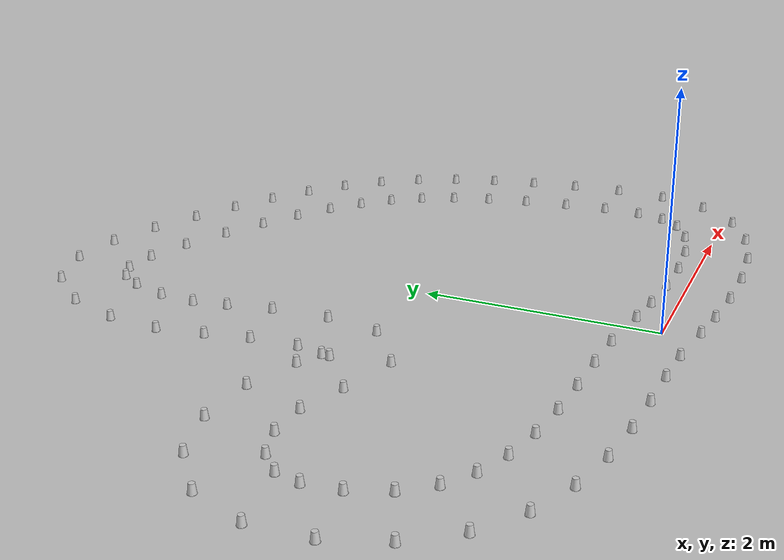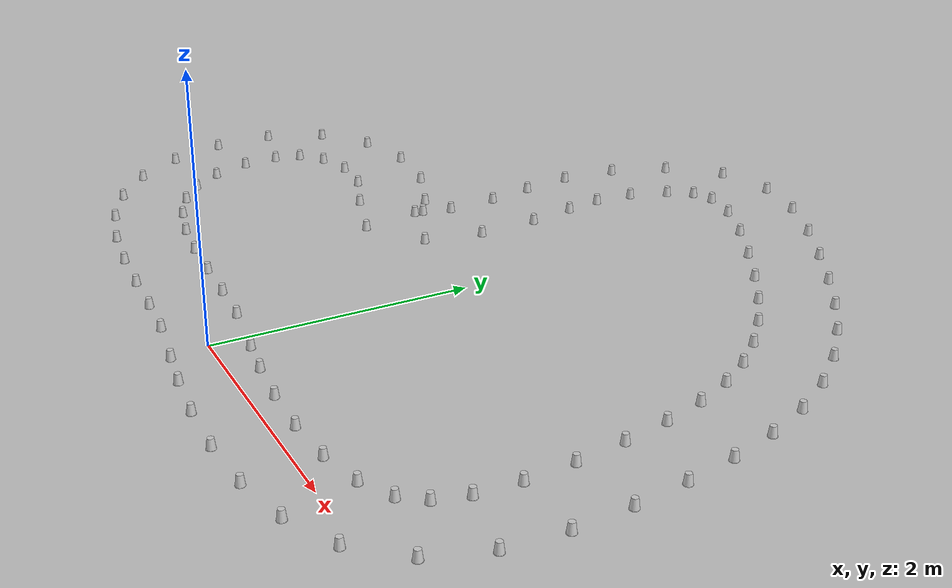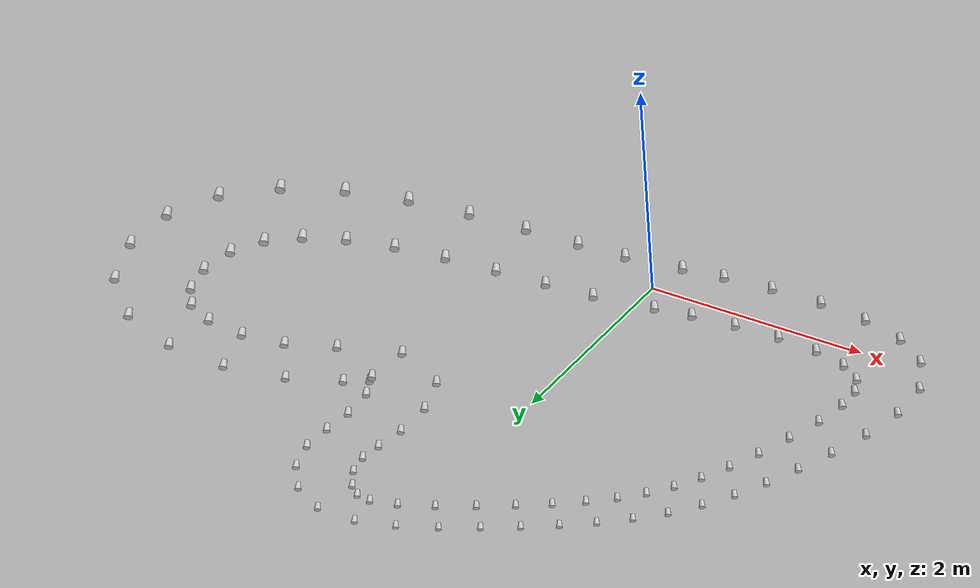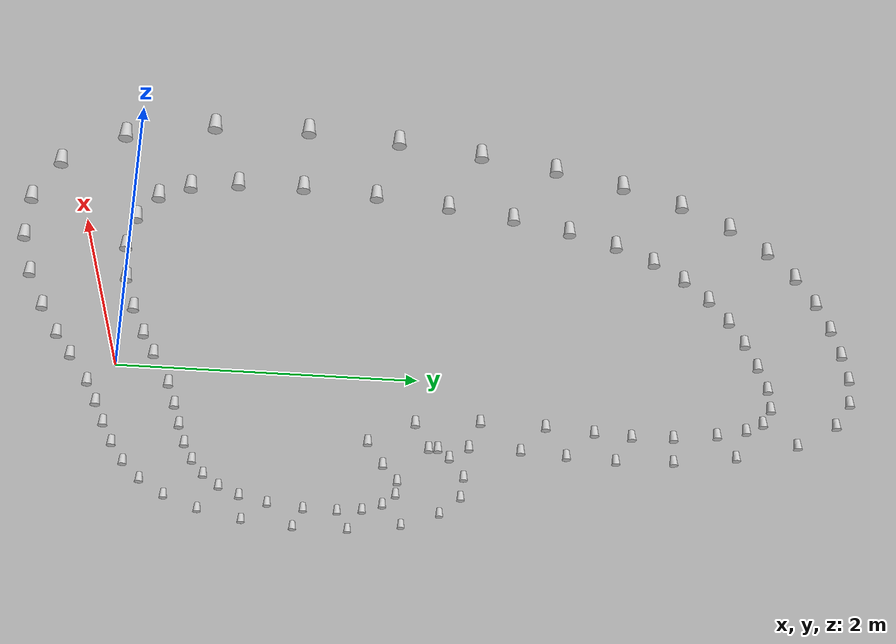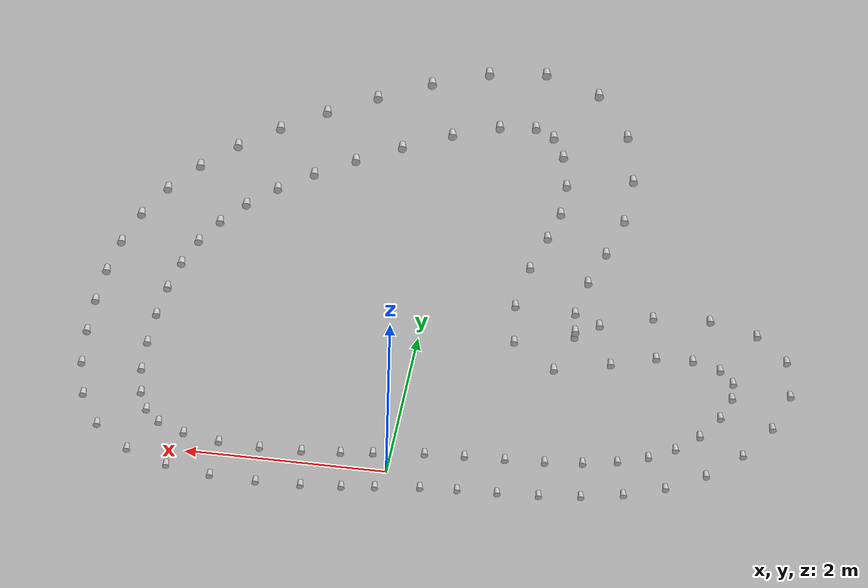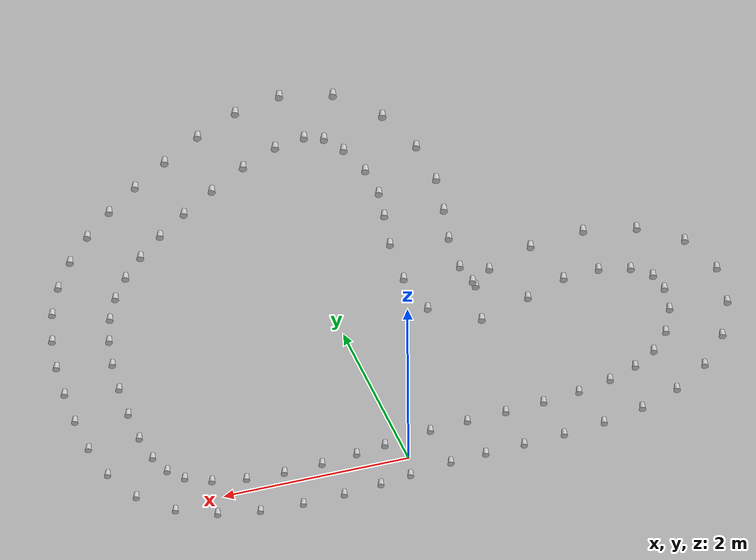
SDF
<?xml version='1.0' encoding='UTF-8'?>
<sdf version="1.4">
  <model name="some track">
    <include>
      <uri>model://cone_yellow</uri>
      <pose>0.07764095767718628 -0.2925142756407604 0 0 0 0</pose>
      <name>cone_right_0</name>
    </include>
    <include>
      <uri>model://cone_yellow</uri>
      <pose>0.41247759490997643 -0.34163523024082687 0 0 0 0</pose>
      <name>cone_right_1</name>
    </include>
    <include>
      <uri>model://cone_yellow</uri>
      <pose>0.8230979436898997 -0.38277723675148156 0 0 0 0</pose>
      <name>cone_right_2</name>
    </include>
    <include>
      <uri>model://cone_yellow</uri>
      <pose>1.2749533141896499 -0.39835285037363155 0 0 0 0</pose>
      <name>cone_right_3</name>
    </include>
    <include>
      <uri>model://cone_yellow</uri>
      <pose>1.7355066128974665 -0.3697492876881382 0 0 0 0</pose>
      <name>cone_right_4</name>
    </include>
    <include>
      <uri>model://cone_yellow</uri>
      <pose>2.1753939891631426 -0.27489542534602235 0 0 0 0</pose>
      <name>cone_right_5</name>
    </include>
    <include>
      <uri>model://cone_yellow</uri>
      <pose>2.5674352006946415 -0.08103030515433801 0 0 0 0</pose>
      <name>cone_right_6</name>
    </include>
    <include>
      <uri>model://cone_yellow</uri>
      <pose>2.8644791417785505 0.2579375270467857 0 0 0 0</pose>
      <name>cone_right_7</name>
    </include>
    <include>
      <uri>model://cone_yellow</uri>
      <pose>3.0011469286714627 0.6903560512015124 0 0 0 0</pose>
      <name>cone_right_8</name>
    </include>
    <include>
      <uri>model://cone_yellow</uri>
      <pose>3.0209700517009215 1.1406696884869936 0 0 0 0</pose>
      <name>cone_right_9</name>
    </include>
    <include>
      <uri>model://cone_yellow</uri>
      <pose>2.978443150760706 1.5857362216162343 0 0 0 0</pose>
      <name>cone_right_10</name>
    </include>
    <include>
      <uri>model://cone_yellow</uri>
      <pose>2.9093135280450984 2.005304172097924 0 0 0 0</pose>
      <name>cone_right_11</name>
    </include>
    <include>
      <uri>model://cone_yellow</uri>
      <pose>2.820876576365466 2.4022343701631836 0 0 0 0</pose>
      <name>cone_right_12</name>
    </include>
    <include>
      <uri>model://cone_yellow</uri>
      <pose>2.7033973939304703 2.7797035895936024 0 0 0 0</pose>
      <name>cone_right_13</name>
    </include>
    <include>
      <uri>model://cone_yellow</uri>
      <pose>2.546590825789422 3.135451396217261 0 0 0 0</pose>
      <name>cone_right_14</name>
    </include>
    <include>
      <uri>model://cone_yellow</uri>
      <pose>2.3414360389475983 3.464737000386012 0 0 0 0</pose>
      <name>cone_right_15</name>
    </include>
    <include>
      <uri>model://cone_yellow</uri>
      <pose>2.0916164875853505 3.76102105295754 0 0 0 0</pose>
      <name>cone_right_16</name>
    </include>
    <include>
      <uri>model://cone_yellow</uri>
      <pose>1.8039145669009922 4.027394351662181 0 0 0 0</pose>
      <name>cone_right_17</name>
    </include>
    <include>
      <uri>model://cone_yellow</uri>
      <pose>1.4835553873127092 4.2699572785506685 0 0 0 0</pose>
      <name>cone_right_18</name>
    </include>
    <include>
      <uri>model://cone_yellow</uri>
      <pose>1.1345193837900958 4.495458854710749 0 0 0 0</pose>
      <name>cone_right_19</name>
    </include>
    <include>
      <uri>model://cone_yellow</uri>
      <pose>0.7598866978535794 4.710583135629994 0 0 0 0</pose>
      <name>cone_right_20</name>
    </include>
    <include>
      <uri>model://cone_yellow</uri>
      <pose>0.36076122994185583 4.91839201685927 0 0 0 0</pose>
      <name>cone_right_21</name>
    </include>
    <include>
      <uri>model://cone_yellow</uri>
      <pose>-0.06188760491622987 5.088466293900037 0 0 0 0</pose>
      <name>cone_right_22</name>
    </include>
    <include>
      <uri>model://cone_yellow</uri>
      <pose>-0.5014344523635107 5.158172589393513 0 0 0 0</pose>
      <name>cone_right_23</name>
    </include>
    <include>
      <uri>model://cone_yellow</uri>
      <pose>-0.9531281166767525 5.022346784528537 0 0 0 0</pose>
      <name>cone_right_24</name>
    </include>
    <include>
      <uri>model://cone_yellow</uri>
      <pose>-1.2830819936853797 4.641932827845344 0 0 0 0</pose>
      <name>cone_right_25</name>
    </include>
    <include>
      <uri>model://cone_yellow</uri>
      <pose>-1.4484545504643416 4.1839492416268715 0 0 0 0</pose>
      <name>cone_right_26</name>
    </include>
    <include>
      <uri>model://cone_yellow</uri>
      <pose>-1.4889673217340837 3.728505430523756 0 0 0 0</pose>
      <name>cone_right_27</name>
    </include>
    <include>
      <uri>model://cone_yellow</uri>
      <pose>-1.4316282098047912 3.3225704203084354 0 0 0 0</pose>
      <name>cone_right_28</name>
    </include>
    <include>
      <uri>model://cone_yellow</uri>
      <pose>-1.36031277591294 2.9486637720089606 0 0 0 0</pose>
      <name>cone_right_29</name>
    </include>
    <include>
      <uri>model://cone_yellow</uri>
      <pose>-1.3391477522037352 2.5432031593746967 0 0 0 0</pose>
      <name>cone_right_30</name>
    </include>
    <include>
      <uri>model://cone_yellow</uri>
      <pose>-1.4009623272196607 2.2405765907720463 0 0 0 0</pose>
      <name>cone_right_31</name>
    </include>
    <include>
      <uri>model://cone_yellow</uri>
      <pose>-1.3930473842237463 2.310359465300001 0 0 0 0</pose>
      <name>cone_right_32</name>
    </include>
    <include>
      <uri>model://cone_yellow</uri>
      <pose>-1.5918826493148637 2.424175891670442 0 0 0 0</pose>
      <name>cone_right_33</name>
    </include>
    <include>
      <uri>model://cone_yellow</uri>
      <pose>-2.0452033818371365 2.5993659819535595 0 0 0 0</pose>
      <name>cone_right_34</name>
    </include>
    <include>
      <uri>model://cone_yellow</uri>
      <pose>-2.5638151857132674 2.6455302081411847 0 0 0 0</pose>
      <name>cone_right_35</name>
    </include>
    <include>
      <uri>model://cone_yellow</uri>
      <pose>-3.0414445388384124 2.524337692128678 0 0 0 0</pose>
      <name>cone_right_36</name>
    </include>
    <include>
      <uri>model://cone_yellow</uri>
      <pose>-3.4223287763147088 2.2259989054304716 0 0 0 0</pose>
      <name>cone_right_37</name>
    </include>
    <include>
      <uri>model://cone_yellow</uri>
      <pose>-3.613690416123618 1.7619681123126676 0 0 0 0</pose>
      <name>cone_right_38</name>
    </include>
    <include>
      <uri>model://cone_yellow</uri>
      <pose>-3.5973836001628627 1.2695576149430639 0 0 0 0</pose>
      <name>cone_right_39</name>
    </include>
    <include>
      <uri>model://cone_yellow</uri>
      <pose>-3.4408481220099385 0.8153229880402602 0 0 0 0</pose>
      <name>cone_right_40</name>
    </include>
    <include>
      <uri>model://cone_yellow</uri>
      <pose>-3.1759808691361995 0.4411231094078295 0 0 0 0</pose>
      <name>cone_right_41</name>
    </include>
    <include>
      <uri>model://cone_yellow</uri>
      <pose>-2.8286497665642747 0.1711758862593812 0 0 0 0</pose>
      <name>cone_right_42</name>
    </include>
    <include>
      <uri>model://cone_yellow</uri>
      <pose>-2.43307209785315 -0.002701607070228984 0 0 0 0</pose>
      <name>cone_right_43</name>
    </include>
    <include>
      <uri>model://cone_yellow</uri>
      <pose>-2.0137509031824234 -0.10442363560652512 0 0 0 0</pose>
      <name>cone_right_44</name>
    </include>
    <include>
      <uri>model://cone_yellow</uri>
      <pose>-1.5855113789014512 -0.15831509160986607 0 0 0 0</pose>
      <name>cone_right_45</name>
    </include>
    <include>
      <uri>model://cone_yellow</uri>
      <pose>-1.1604935068313913 -0.18495716241665325 0 0 0 0</pose>
      <name>cone_right_46</name>
    </include>
    <include>
      <uri>model://cone_yellow</uri>
      <pose>-0.751634619175576 -0.20222375668317744 0 0 0 0</pose>
      <name>cone_right_47</name>
    </include>
    <include>
      <uri>model://cone_yellow</uri>
      <pose>-0.3737356659911529 -0.2262963825769702 0 0 0 0</pose>
      <name>cone_right_48</name>
    </include>
    <include>
      <uri>model://cone_blue</uri>
      <pose>0.17138766860070853 0.24943734045704366 0 0 0 0</pose>
      <name>cone_left_0</name>
    </include>
    <include>
      <uri>model://cone_blue</uri>
      <pose>0.48730868074602723 0.20325036196417692 0 0 0 0</pose>
      <name>cone_left_1</name>
    </include>
    <include>
      <uri>model://cone_blue</uri>
      <pose>0.8704799707896276 0.1651780018473666 0 0 0 0</pose>
      <name>cone_left_2</name>
    </include>
    <include>
      <uri>model://cone_blue</uri>
      <pose>1.282770380977602 0.15159159542688086 0 0 0 0</pose>
      <name>cone_left_3</name>
    </include>
    <include>
      <uri>model://cone_blue</uri>
      <pose>1.6840371572404997 0.17783713940294263 0 0 0 0</pose>
      <name>cone_left_4</name>
    </include>
    <include>
      <uri>model://cone_blue</uri>
      <pose>2.030964302647312 0.25580229054593345 0 0 0 0</pose>
      <name>cone_left_5</name>
    </include>
    <include>
      <uri>model://cone_blue</uri>
      <pose>2.2780522119088666 0.3866848707822698 0 0 0 0</pose>
      <name>cone_left_6</name>
    </include>
    <include>
      <uri>model://cone_blue</uri>
      <pose>2.402470716012156 0.5563470016297116 0 0 0 0</pose>
      <name>cone_left_7</name>
    </include>
    <include>
      <uri>model://cone_blue</uri>
      <pose>2.46252495903422 0.8016501383045468 0 0 0 0</pose>
      <name>cone_left_8</name>
    </include>
    <include>
      <uri>model://cone_blue</uri>
      <pose>2.470987684790343 1.1362655895510345 0 0 0 0</pose>
      <name>cone_left_9</name>
    </include>
    <include>
      <uri>model://cone_blue</uri>
      <pose>2.4324611497714383 1.5193761839749296 0 0 0 0</pose>
      <name>cone_left_10</name>
    </include>
    <include>
      <uri>model://cone_blue</uri>
      <pose>2.3677577103512375 1.909297420658592 0 0 0 0</pose>
      <name>cone_left_11</name>
    </include>
    <include>
      <uri>model://cone_blue</uri>
      <pose>2.286267780719512 2.2730312911829094 0 0 0 0</pose>
      <name>cone_left_12</name>
    </include>
    <include>
      <uri>model://cone_blue</uri>
      <pose>2.182710336015268 2.6025455027908513 0 0 0 0</pose>
      <name>cone_left_13</name>
    </include>
    <include>
      <uri>model://cone_blue</uri>
      <pose>2.0514787880298178 2.8959434212654194 0 0 0 0</pose>
      <name>cone_left_14</name>
    </include>
    <include>
      <uri>model://cone_blue</uri>
      <pose>1.887104369977781 3.1547648491028686 0 0 0 0</pose>
      <name>cone_left_15</name>
    </include>
    <include>
      <uri>model://cone_blue</uri>
      <pose>1.6844688021623706 3.3912498233375086 0 0 0 0</pose>
      <name>cone_left_16</name>
    </include>
    <include>
      <uri>model://cone_blue</uri>
      <pose>1.4424552787412837 3.6128498027858553 0 0 0 0</pose>
      <name>cone_left_17</name>
    </include>
    <include>
      <uri>model://cone_blue</uri>
      <pose>1.1615752512423405 3.824055056111593 0 0 0 0</pose>
      <name>cone_left_18</name>
    </include>
    <include>
      <uri>model://cone_blue</uri>
      <pose>0.8435848466419577 4.028707212941382 0 0 0 0</pose>
      <name>cone_left_19</name>
    </include>
    <include>
      <uri>model://cone_blue</uri>
      <pose>0.4911404853657122 4.230712868502069 0 0 0 0</pose>
      <name>cone_left_20</name>
    </include>
    <include>
      <uri>model://cone_blue</uri>
      <pose>0.11341256930937527 4.427150080453879 0 0 0 0</pose>
      <name>cone_left_21</name>
    </include>
    <include>
      <uri>model://cone_blue</uri>
      <pose>-0.24630842624697397 4.570307089929198 0 0 0 0</pose>
      <name>cone_left_22</name>
    </include>
    <include>
      <uri>model://cone_blue</uri>
      <pose>-0.534978097525114 4.609196429738767 0 0 0 0</pose>
      <name>cone_left_23</name>
    </include>
    <include>
      <uri>model://cone_blue</uri>
      <pose>-0.6976170602859377 4.535300482764475 0 0 0 0</pose>
      <name>cone_left_24</name>
    </include>
    <include>
      <uri>model://cone_blue</uri>
      <pose>-0.8184301298352172 4.3476563499872425 0 0 0 0</pose>
      <name>cone_left_25</name>
    </include>
    <include>
      <uri>model://cone_blue</uri>
      <pose>-0.9178524019365812 4.039168856291964 0 0 0 0</pose>
      <name>cone_left_26</name>
    </include>
    <include>
      <uri>model://cone_blue</uri>
      <pose>-0.9390082035344405 3.721799589109669 0 0 0 0</pose>
      <name>cone_left_27</name>
    </include>
    <include>
      <uri>model://cone_blue</uri>
      <pose>-0.8911939430303749 3.4247017245006313 0 0 0 0</pose>
      <name>cone_left_28</name>
    </include>
    <include>
      <uri>model://cone_blue</uri>
      <pose>-0.8184315779619052 3.042816665257927 0 0 0 0</pose>
      <name>cone_left_29</name>
    </include>
    <include>
      <uri>model://cone_blue</uri>
      <pose>-0.7891991319632659 2.5507208116414777 0 0 0 0</pose>
      <name>cone_left_30</name>
    </include>
    <include>
      <uri>model://cone_blue</uri>
      <pose>-0.8744422050672733 2.0815905506029955 0 0 0 0</pose>
      <name>cone_left_31</name>
    </include>
    <include>
      <uri>model://cone_blue</uri>
      <pose>-1.3151496750374356 1.7659038225672572 0 0 0 0</pose>
      <name>cone_left_32</name>
    </include>
    <include>
      <uri>model://cone_blue</uri>
      <pose>-1.8207346250641576 1.9240491345421666 0 0 0 0</pose>
      <name>cone_left_33</name>
    </include>
    <include>
      <uri>model://cone_blue</uri>
      <pose>-2.2151300992754517 2.076274297159547 0 0 0 0</pose>
      <name>cone_left_34</name>
    </include>
    <include>
      <uri>model://cone_blue</uri>
      <pose>-2.560295263664145 2.0955414717576404 0 0 0 0</pose>
      <name>cone_left_35</name>
    </include>
    <include>
      <uri>model://cone_blue</uri>
      <pose>-2.8481741319885048 2.0094138629693825 0 0 0 0</pose>
      <name>cone_left_36</name>
    </include>
    <include>
      <uri>model://cone_blue</uri>
      <pose>-3.0215636290735546 1.849319603162911 0 0 0 0</pose>
      <name>cone_left_37</name>
    </include>
    <include>
      <uri>model://cone_blue</uri>
      <pose>-3.078037336461676 1.6371651546206425 0 0 0 0</pose>
      <name>cone_left_38</name>
    </include>
    <include>
      <uri>model://cone_blue</uri>
      <pose>-3.0522742670117897 1.3427410482568427 0 0 0 0</pose>
      <name>cone_left_39</name>
    </include>
    <include>
      <uri>model://cone_blue</uri>
      <pose>-2.936710812134978 1.0351992550452243 0 0 0 0</pose>
      <name>cone_left_40</name>
    </include>
    <include>
      <uri>model://cone_blue</uri>
      <pose>-2.7574560381739737 0.7979661643606205 0 0 0 0</pose>
      <name>cone_left_41</name>
    </include>
    <include>
      <uri>model://cone_blue</uri>
      <pose>-2.5278065484839543 0.631603250927335 0 0 0 0</pose>
      <name>cone_left_42</name>
    </include>
    <include>
      <uri>model://cone_blue</uri>
      <pose>-2.2422210600962216 0.5131238298627545 0 0 0 0</pose>
      <name>cone_left_43</name>
    </include>
    <include>
      <uri>model://cone_blue</uri>
      <pose>-1.904759383656523 0.434668980435872 0 0 0 0</pose>
      <name>cone_left_44</name>
    </include>
    <include>
      <uri>model://cone_blue</uri>
      <pose>-1.529159173640824 0.38879040915051216 0 0 0 0</pose>
      <name>cone_left_45</name>
    </include>
    <include>
      <uri>model://cone_blue</uri>
      <pose>-1.131843299053323 0.3642961175865467 0 0 0 0</pose>
      <name>cone_left_46</name>
    </include>
    <include>
      <uri>model://cone_blue</uri>
      <pose>-0.728437278516015 0.34728682864373356 0 0 0 0</pose>
      <name>cone_left_47</name>
    </include>
    <include>
      <uri>model://cone_blue</uri>
      <pose>-0.33270301279708275 0.32217086473307216 0 0 0 0</pose>
      <name>cone_left_48</name>
    </include>

  </model>
</sdf>

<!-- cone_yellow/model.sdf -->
<sdf version='1.4'>
  <model name="cone_yellow">
    <link name="link">
    <collision name="collision"><geometry><box><size> 0.05 0.05 0.01</size>
             </box></geometry></collision>
      <visual name="visual">
        <geometry>
          <mesh>
            <uri>model://cup.dae</uri>
            <scale>1 1 1</scale>
          </mesh>
        </geometry>
        <material>
            <script>
              <uri>model://cone_yellow/materials/scripts</uri>
              <uri>model://cone_yellow/materials/textures</uri>
              <name>cone_yellow/Image</name>
            </script>
        </material>
      </visual>
    </link>
  </model>
</sdf>

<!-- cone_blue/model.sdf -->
<sdf version='1.4'>
  <model name="cone_blue">
    <link name="link">
    <collision name="collision"><geometry><box><size> 0.05 0.05 0.01</size>
             </box></geometry></collision>
      <visual name="visual">
        <geometry>
          <mesh>
            <uri>model://cup.dae</uri>
            <scale>1 1 1</scale>
          </mesh>
        </geometry>
        <material>
            <script>
              <uri>model://cone_blue/materials/scripts</uri>
              <uri>model://cone_blue/materials/textures</uri>
              <name>cone_blue/Image</name>
            </script>
        </material>
      </visual>
    </link>
  </model>
</sdf>
